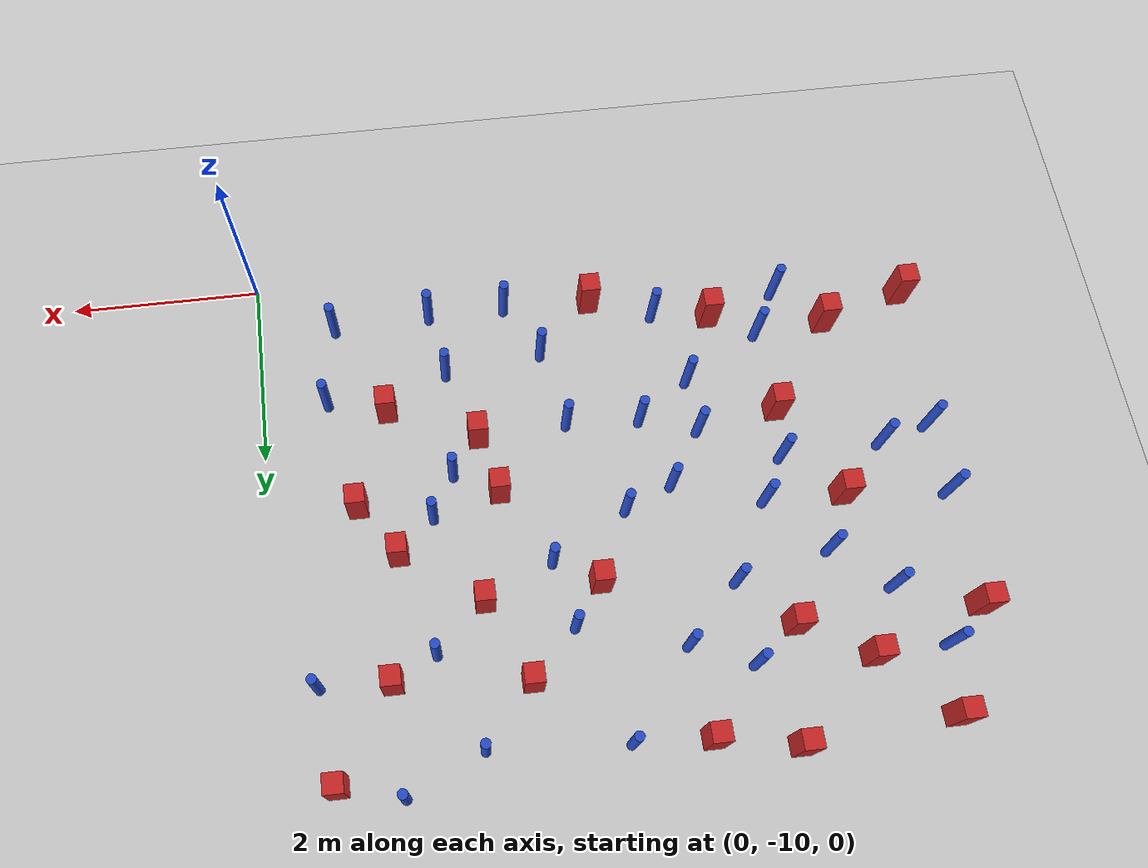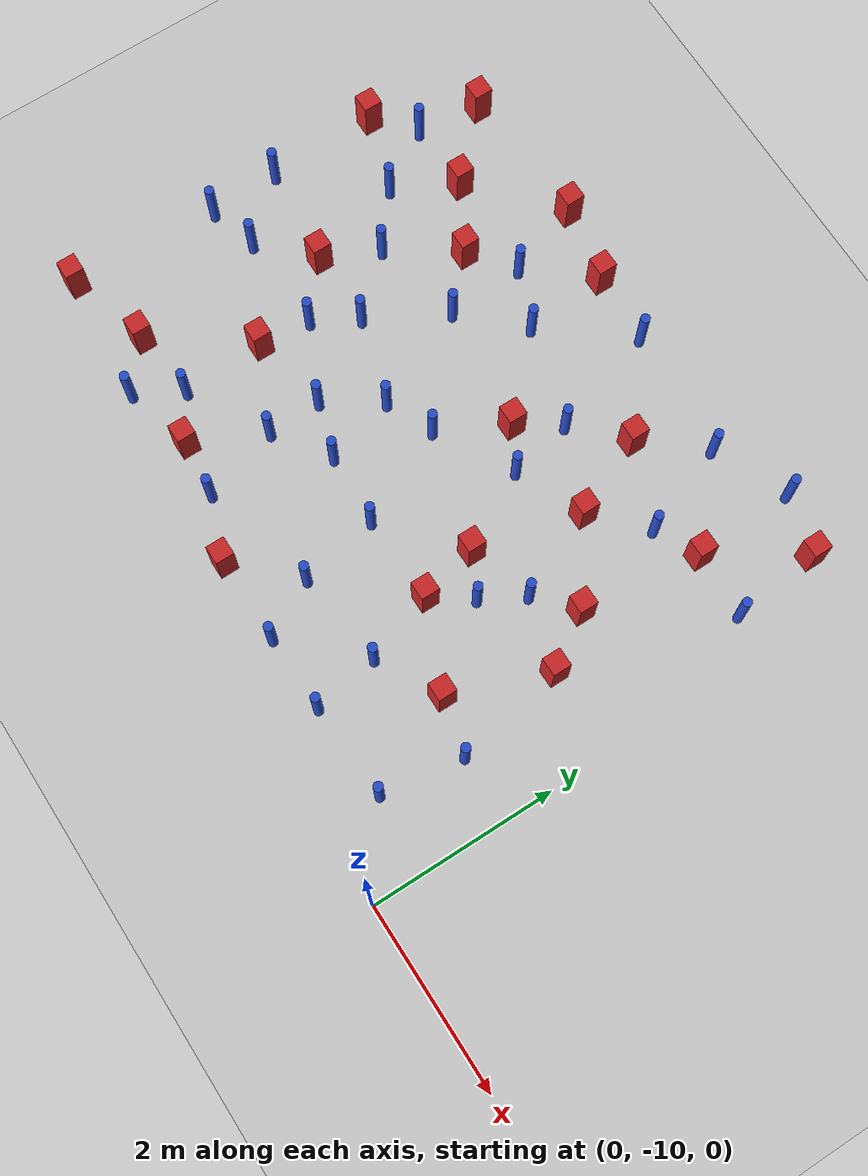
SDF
<sdf version="1.6">
 <world name="default">
  <model name="ground_plane">
   <static>1</static>
   <link name="link">
    <collision name="collision">
     <geometry><plane><normal>0 0 1</normal><size>100 100</size></plane></geometry>
     <surface><friction><ode><mu>100</mu><mu2>50</mu2></ode></friction></surface>
    </collision>
    <visual name="visual">
     <cast_shadows>0</cast_shadows>
     <geometry><plane><normal>0 0 1</normal><size>100 100</size></plane></geometry>
     <material>
      <ambient>1.0 1.0 1.0 1.0</ambient>
      <diffuse>0.8 0.8 0.8 1.0</diffuse>
      <specular>0.01 0.01 0.01 1.000000</specular>
     </material>
    </visual>
   </link>
  </model>
  <model name="pole_obstacle2">
   <static>true</static>
   <pose>-5.59942114172 -9.33628321558 7.38925637345e-09 -8.471706928e-08 1.24976765081e-08 -1.74513093015e-07</pose>
   <link name="link">
    <pose>0 0 0.3 0 -0 0</pose>
    <inertial>
     <mass>1</mass>
     <inertia><ixx>0.145833</ixx><ixy>0</ixy><ixz>0</ixz><iyy>0.145833</iyy><iyz>0</iyz><izz>0.125</izz></inertia>
    </inertial>
    <collision name="collision">
     <geometry><cylinder><radius>0.05</radius><length>.6</length></cylinder></geometry>
    </collision>
    <visual name="visual">
     <geometry><cylinder><radius>0.05</radius><length>.6</length></cylinder></geometry>
     <material>
      <script><name>Gazebo/Blue</name><uri>file://media/materials/scripts/gazebo.material</uri></script>
     </material>
    </visual>
   </link>
  </model>
  <model name="pole_obstacle4">
   <static>true</static>
   <pose>-6.13567891964 -5.92751937192 7.38925637345e-09 -8.47170692796e-08 1.24976764786e-08 -1.74513093032e-07</pose>
   <link name="link">
    <pose>0 0 0.3 0 -0 0</pose>
    <inertial>
     <mass>1</mass>
     <inertia><ixx>0.145833</ixx><ixy>0</ixy><ixz>0</ixz><iyy>0.145833</iyy><iyz>0</iyz><izz>0.125</izz></inertia>
    </inertial>
    <collision name="collision">
     <geometry><cylinder><radius>0.05</radius><length>.6</length></cylinder></geometry>
    </collision>
    <visual name="visual">
     <geometry><cylinder><radius>0.05</radius><length>.6</length></cylinder></geometry>
     <material>
      <script><name>Gazebo/Blue</name><uri>file://media/materials/scripts/gazebo.material</uri></script>
     </material>
    </visual>
   </link>
  </model>
  <model name="pole_obstacle7">
   <static>true</static>
   <pose>-5.32502928217 -8.85648023262 7.38925637345e-09 -8.471706928e-08 1.24976765081e-08 -1.74513093015e-07</pose>
   <link name="link">
    <pose>0 0 0.3 0 -0 0</pose>
    <inertial>
     <mass>1</mass>
     <inertia><ixx>0.145833</ixx><ixy>0</ixy><ixz>0</ixz><iyy>0.145833</iyy><iyz>0</iyz><izz>0.125</izz></inertia>
    </inertial>
    <collision name="collision">
     <geometry><cylinder><radius>0.05</radius><length>.6</length></cylinder></geometry>
    </collision>
    <visual name="visual">
     <geometry><cylinder><radius>0.05</radius><length>.6</length></cylinder></geometry>
     <material>
      <script><name>Gazebo/Blue</name><uri>file://media/materials/scripts/gazebo.material</uri></script>
     </material>
    </visual>
   </link>
  </model>
  <model name="square_post_obstacle15">
   <static>true</static>
   <pose>-5.79865382688 -5.27832729134 1.91545236811e-07 -7.35059704564e-06 1.12565212e-07 2.39332434364e-05</pose>
   <link name="link">
    <pose>0 0 0.25 0 -0 0</pose>
    <inertial>
     <mass>100</mass>
     <inertia>
      <ixx>0.166667</ixx>
      <ixy>0</ixy>
      <ixz>0</ixz>
      <iyy>0.166667</iyy>
      <iyz>0</iyz>
      <izz>0.166667</izz>
     </inertia>
    </inertial>
    <collision name="collision"><geometry><box><size>.2 .2 .5</size></box></geometry></collision>
    <visual name="visual">
     <geometry><box><size>.2 .2 .5</size></box></geometry>
     <material>
      <script><name>Gazebo/Red</name><uri>file://media/materials/scripts/gazebo.material</uri></script>
     </material>
    </visual>
   </link>
  </model>
  <model name="square_post_obstacle19">
   <static>true</static>
   <pose>-5.86505825323 -6.95468134986 1.91545236811e-07 -7.35059704564e-06 1.12565212e-07 2.39332434364e-05</pose>
   <link name="link">
    <pose>0 0 0.25 0 -0 0</pose>
    <inertial>
     <mass>100</mass>
     <inertia>
      <ixx>0.166667</ixx>
      <ixy>0</ixy>
      <ixz>0</ixz>
      <iyy>0.166667</iyy>
      <iyz>0</iyz>
      <izz>0.166667</izz>
     </inertia>
    </inertial>
    <collision name="collision"><geometry><box><size>.2 .2 .5</size></box></geometry></collision>
    <visual name="visual">
     <geometry><box><size>.2 .2 .5</size></box></geometry>
     <material>
      <script><name>Gazebo/Red</name><uri>file://media/materials/scripts/gazebo.material</uri></script>
     </material>
    </visual>
   </link>
  </model>
  <model name="pole_obstacle11">
   <static>true</static>
   <pose>-4.50997435611 -7.80186108126 7.38925637345e-09 -8.47170692796e-08 1.24976764786e-08 -1.74513093032e-07</pose>
   <link name="link">
    <pose>0 0 0.3 0 -0 0</pose>
    <inertial>
     <mass>1</mass>
     <inertia><ixx>0.145833</ixx><ixy>0</ixy><ixz>0</ixz><iyy>0.145833</iyy><iyz>0</iyz><izz>0.125</izz></inertia>
    </inertial>
    <collision name="collision">
     <geometry><cylinder><radius>0.05</radius><length>.6</length></cylinder></geometry>
    </collision>
    <visual name="visual">
     <geometry><cylinder><radius>0.05</radius><length>.6</length></cylinder></geometry>
     <material>
      <script><name>Gazebo/Blue</name><uri>file://media/materials/scripts/gazebo.material</uri></script>
     </material>
    </visual>
   </link>
  </model>
  <model name="square_post_obstacle24">
   <static>true</static>
   <pose>-6.97479643628 -9.19102325325 1.91545236811e-07 -7.35059704564e-06 1.12565212e-07 2.39332434364e-05</pose>
   <link name="link">
    <pose>0 0 0.25 0 -0 0</pose>
    <inertial>
     <mass>100</mass>
     <inertia>
      <ixx>0.166667</ixx>
      <ixy>0</ixy>
      <ixz>0</ixz>
      <iyy>0.166667</iyy>
      <iyz>0</iyz>
      <izz>0.166667</izz>
     </inertia>
    </inertial>
    <collision name="collision"><geometry><box><size>.2 .2 .5</size></box></geometry></collision>
    <visual name="visual">
     <geometry><box><size>.2 .2 .5</size></box></geometry>
     <material>
      <script><name>Gazebo/Red</name><uri>file://media/materials/scripts/gazebo.material</uri></script>
     </material>
    </visual>
   </link>
  </model>
  <model name="square_post_obstacle33">
   <static>true</static>
   <pose>-5.36656055961 -7.96376915441 1.91545236811e-07 -7.35059704564e-06 1.12565212e-07 2.39332434364e-05</pose>
   <link name="link">
    <pose>0 0 0.25 0 -0 0</pose>
    <inertial>
     <mass>100</mass>
     <inertia>
      <ixx>0.166667</ixx>
      <ixy>0</ixy>
      <ixz>0</ixz>
      <iyy>0.166667</iyy>
      <iyz>0</iyz>
      <izz>0.166667</izz>
     </inertia>
    </inertial>
    <collision name="collision"><geometry><box><size>.2 .2 .5</size></box></geometry></collision>
    <visual name="visual">
     <geometry><box><size>.2 .2 .5</size></box></geometry>
     <material>
      <script><name>Gazebo/Red</name><uri>file://media/materials/scripts/gazebo.material</uri></script>
     </material>
    </visual>
   </link>
  </model>
  <model name="pole_obstacle41">
   <static>true</static>
   <pose>-6.89412848095 -7.60096703606 7.38925637345e-09 -8.47170692796e-08 1.24976764786e-08 -1.74513093032e-07</pose>
   <link name="link">
    <pose>0 0 0.3 0 -0 0</pose>
    <inertial>
     <mass>1</mass>
     <inertia><ixx>0.145833</ixx><ixy>0</ixy><ixz>0</ixz><iyy>0.145833</iyy><iyz>0</iyz><izz>0.125</izz></inertia>
    </inertial>
    <collision name="collision">
     <geometry><cylinder><radius>0.05</radius><length>.6</length></cylinder></geometry>
    </collision>
    <visual name="visual">
     <geometry><cylinder><radius>0.05</radius><length>.6</length></cylinder></geometry>
     <material>
      <script><name>Gazebo/Blue</name><uri>file://media/materials/scripts/gazebo.material</uri></script>
     </material>
    </visual>
   </link>
  </model>
  <model name="square_post_obstacle41">
   <static>true</static>
   <pose>-0.546519905463 -4.6019082695 1.91545236811e-07 -7.35059704564e-06 1.12565212e-07 2.39332434364e-05</pose>
   <link name="link">
    <pose>0 0 0.25 0 -0 0</pose>
    <inertial>
     <mass>100</mass>
     <inertia>
      <ixx>0.166667</ixx>
      <ixy>0</ixy>
      <ixz>0</ixz>
      <iyy>0.166667</iyy>
      <iyz>0</iyz>
      <izz>0.166667</izz>
     </inertia>
    </inertial>
    <collision name="collision"><geometry><box><size>.2 .2 .5</size></box></geometry></collision>
    <visual name="visual">
     <geometry><box><size>.2 .2 .5</size></box></geometry>
     <material>
      <script><name>Gazebo/Red</name><uri>file://media/materials/scripts/gazebo.material</uri></script>
     </material>
    </visual>
   </link>
  </model>
  <model name="square_post_obstacle42">
   <static>true</static>
   <pose>-1.31060066251 -8.38864413379 1.91545236811e-07 -7.35059704564e-06 1.12565212e-07 2.39332434364e-05</pose>
   <link name="link">
    <pose>0 0 0.25 0 -0 0</pose>
    <inertial>
     <mass>100</mass>
     <inertia>
      <ixx>0.166667</ixx>
      <ixy>0</ixy>
      <ixz>0</ixz>
      <iyy>0.166667</iyy>
      <iyz>0</iyz>
      <izz>0.166667</izz>
     </inertia>
    </inertial>
    <collision name="collision"><geometry><box><size>.2 .2 .5</size></box></geometry></collision>
    <visual name="visual">
     <geometry><box><size>.2 .2 .5</size></box></geometry>
     <material>
      <script><name>Gazebo/Red</name><uri>file://media/materials/scripts/gazebo.material</uri></script>
     </material>
    </visual>
   </link>
  </model>
  <model name="pole_obstacle46">
   <static>true</static>
   <pose>-2.66505201719 -9.46393592361 7.38925637345e-09 -8.47170692793e-08 1.24976764408e-08 -1.74513093041e-07</pose>
   <link name="link">
    <pose>0 0 0.3 0 -0 0</pose>
    <inertial>
     <mass>1</mass>
     <inertia><ixx>0.145833</ixx><ixy>0</ixy><ixz>0</ixz><iyy>0.145833</iyy><iyz>0</iyz><izz>0.125</izz></inertia>
    </inertial>
    <collision name="collision">
     <geometry><cylinder><radius>0.05</radius><length>.6</length></cylinder></geometry>
    </collision>
    <visual name="visual">
     <geometry><cylinder><radius>0.05</radius><length>.6</length></cylinder></geometry>
     <material>
      <script><name>Gazebo/Blue</name><uri>file://media/materials/scripts/gazebo.material</uri></script>
     </material>
    </visual>
   </link>
  </model>
  <model name="pole_obstacle48">
   <static>true</static>
   <pose>-1.9566882866 -4.78122615546 7.38925637345e-09 -8.47170692799e-08 1.2497676507e-08 -1.74513093016e-07</pose>
   <link name="link">
    <pose>0 0 0.3 0 -0 0</pose>
    <inertial>
     <mass>1</mass>
     <inertia><ixx>0.145833</ixx><ixy>0</ixy><ixz>0</ixz><iyy>0.145833</iyy><iyz>0</iyz><izz>0.125</izz></inertia>
    </inertial>
    <collision name="collision">
     <geometry><cylinder><radius>0.05</radius><length>.6</length></cylinder></geometry>
    </collision>
    <visual name="visual">
     <geometry><cylinder><radius>0.05</radius><length>.6</length></cylinder></geometry>
     <material>
      <script><name>Gazebo/Blue</name><uri>file://media/materials/scripts/gazebo.material</uri></script>
     </material>
    </visual>
   </link>
  </model>
  <model name="square_post_obstacle57">
   <static>true</static>
   <pose>-4.92957913262 -4.50563737239 1.91545236811e-07 -7.35059704564e-06 1.12565212e-07 2.39332434364e-05</pose>
   <link name="link">
    <pose>0 0 0.25 0 -0 0</pose>
    <inertial>
     <mass>100</mass>
     <inertia>
      <ixx>0.166667</ixx>
      <ixy>0</ixy>
      <ixz>0</ixz>
      <iyy>0.166667</iyy>
      <iyz>0</iyz>
      <izz>0.166667</izz>
     </inertia>
    </inertial>
    <collision name="collision"><geometry><box><size>.2 .2 .5</size></box></geometry></collision>
    <visual name="visual">
     <geometry><box><size>.2 .2 .5</size></box></geometry>
     <material>
      <script><name>Gazebo/Red</name><uri>file://media/materials/scripts/gazebo.material</uri></script>
     </material>
    </visual>
   </link>
  </model>
  <model name="pole_obstacle57">
   <static>true</static>
   <pose>-1.58524360668 -5.74395826012 7.38925637345e-09 -8.47170692799e-08 1.24976765033e-08 -1.74513093018e-07</pose>
   <link name="link">
    <pose>0 0 0.3 0 -0 0</pose>
    <inertial>
     <mass>1</mass>
     <inertia><ixx>0.145833</ixx><ixy>0</ixy><ixz>0</ixz><iyy>0.145833</iyy><iyz>0</iyz><izz>0.125</izz></inertia>
    </inertial>
    <collision name="collision">
     <geometry><cylinder><radius>0.05</radius><length>.6</length></cylinder></geometry>
    </collision>
    <visual name="visual">
     <geometry><cylinder><radius>0.05</radius><length>.6</length></cylinder></geometry>
     <material>
      <script><name>Gazebo/Blue</name><uri>file://media/materials/scripts/gazebo.material</uri></script>
     </material>
    </visual>
   </link>
  </model>
  <model name="pole_obstacle58">
   <static>true</static>
   <pose>-2.8232612555 -6.54760859134 7.38925637345e-09 -8.47170692798e-08 1.24976765033e-08 -1.74513093019e-07</pose>
   <link name="link">
    <pose>0 0 0.3 0 -0 0</pose>
    <inertial>
     <mass>1</mass>
     <inertia><ixx>0.145833</ixx><ixy>0</ixy><ixz>0</ixz><iyy>0.145833</iyy><iyz>0</iyz><izz>0.125</izz></inertia>
    </inertial>
    <collision name="collision">
     <geometry><cylinder><radius>0.05</radius><length>.6</length></cylinder></geometry>
    </collision>
    <visual name="visual">
     <geometry><cylinder><radius>0.05</radius><length>.6</length></cylinder></geometry>
     <material>
      <script><name>Gazebo/Blue</name><uri>file://media/materials/scripts/gazebo.material</uri></script>
     </material>
    </visual>
   </link>
  </model>
  <model name="pole_obstacle62">
   <static>true</static>
   <pose>-3.63109422579 -7.01114262216 7.38925637345e-09 -8.47170692794e-08 1.24976764468e-08 -1.7451309304e-07</pose>
   <link name="link">
    <pose>0 0 0.3 0 -0 0</pose>
    <inertial>
     <mass>1</mass>
     <inertia><ixx>0.145833</ixx><ixy>0</ixy><ixz>0</ixz><iyy>0.145833</iyy><iyz>0</iyz><izz>0.125</izz></inertia>
    </inertial>
    <collision name="collision">
     <geometry><cylinder><radius>0.05</radius><length>.6</length></cylinder></geometry>
    </collision>
    <visual name="visual">
     <geometry><cylinder><radius>0.05</radius><length>.6</length></cylinder></geometry>
     <material>
      <script><name>Gazebo/Blue</name><uri>file://media/materials/scripts/gazebo.material</uri></script>
     </material>
    </visual>
   </link>
  </model>
  <model name="pole_obstacle63">
   <static>true</static>
   <pose>-0.42474610591 -5.5409962139 7.38925637345e-09 -8.471706928e-08 1.24976765079e-08 -1.74513093015e-07</pose>
   <link name="link">
    <pose>0 0 0.3 0 -0 0</pose>
    <inertial>
     <mass>1</mass>
     <inertia><ixx>0.145833</ixx><ixy>0</ixy><ixz>0</ixz><iyy>0.145833</iyy><iyz>0</iyz><izz>0.125</izz></inertia>
    </inertial>
    <collision name="collision">
     <geometry><cylinder><radius>0.05</radius><length>.6</length></cylinder></geometry>
    </collision>
    <visual name="visual">
     <geometry><cylinder><radius>0.05</radius><length>.6</length></cylinder></geometry>
     <material>
      <script><name>Gazebo/Blue</name><uri>file://media/materials/scripts/gazebo.material</uri></script>
     </material>
    </visual>
   </link>
  </model>
  <model name="square_post_obstacle66">
   <static>true</static>
   <pose>-1.29973315345 -6.80086795302 1.91545236811e-07 -7.35059704564e-06 1.12565212e-07 2.39332434364e-05</pose>
   <link name="link">
    <pose>0 0 0.25 0 -0 0</pose>
    <inertial>
     <mass>100</mass>
     <inertia>
      <ixx>0.166667</ixx>
      <ixy>0</ixy>
      <ixz>0</ixz>
      <iyy>0.166667</iyy>
      <iyz>0</iyz>
      <izz>0.166667</izz>
     </inertia>
    </inertial>
    <collision name="collision"><geometry><box><size>.2 .2 .5</size></box></geometry></collision>
    <visual name="visual">
     <geometry><box><size>.2 .2 .5</size></box></geometry>
     <material>
      <script><name>Gazebo/Red</name><uri>file://media/materials/scripts/gazebo.material</uri></script>
     </material>
    </visual>
   </link>
  </model>
  <model name="square_post_obstacle75">
   <static>true</static>
   <pose>-6.07728561277 -8.93765983794 1.91545236811e-07 -7.35059704564e-06 1.12565212e-07 2.39332434364e-05</pose>
   <link name="link">
    <pose>0 0 0.25 0 -0 0</pose>
    <inertial>
     <mass>100</mass>
     <inertia>
      <ixx>0.166667</ixx>
      <ixy>0</ixy>
      <ixz>0</ixz>
      <iyy>0.166667</iyy>
      <iyz>0</iyz>
      <izz>0.166667</izz>
     </inertia>
    </inertial>
    <collision name="collision"><geometry><box><size>.2 .2 .5</size></box></geometry></collision>
    <visual name="visual">
     <geometry><box><size>.2 .2 .5</size></box></geometry>
     <material>
      <script><name>Gazebo/Red</name><uri>file://media/materials/scripts/gazebo.material</uri></script>
     </material>
    </visual>
   </link>
  </model>
  <model name="pole_obstacle79">
   <static>true</static>
   <pose>-4.64412056646 -5.3079559077 7.38925637345e-09 -8.47170692796e-08 1.24976764786e-08 -1.74513093032e-07</pose>
   <link name="link">
    <pose>0 0 0.3 0 -0 0</pose>
    <inertial>
     <mass>1</mass>
     <inertia><ixx>0.145833</ixx><ixy>0</ixy><ixz>0</ixz><iyy>0.145833</iyy><iyz>0</iyz><izz>0.125</izz></inertia>
    </inertial>
    <collision name="collision">
     <geometry><cylinder><radius>0.05</radius><length>.6</length></cylinder></geometry>
    </collision>
    <visual name="visual">
     <geometry><cylinder><radius>0.05</radius><length>.6</length></cylinder></geometry>
     <material>
      <script><name>Gazebo/Blue</name><uri>file://media/materials/scripts/gazebo.material</uri></script>
     </material>
    </visual>
   </link>
  </model>
  <model name="pole_obstacle96">
   <static>true</static>
   <pose>-3.9251048176 -7.98612637888 7.38925637345e-09 -8.47170692799e-08 1.24976764946e-08 -1.74513093024e-07</pose>
   <link name="link">
    <pose>0 0 0.3 0 -0 0</pose>
    <inertial>
     <mass>1</mass>
     <inertia><ixx>0.145833</ixx><ixy>0</ixy><ixz>0</ixz><iyy>0.145833</iyy><iyz>0</iyz><izz>0.125</izz></inertia>
    </inertial>
    <collision name="collision">
     <geometry><cylinder><radius>0.05</radius><length>.6</length></cylinder></geometry>
    </collision>
    <visual name="visual">
     <geometry><cylinder><radius>0.05</radius><length>.6</length></cylinder></geometry>
     <material>
      <script><name>Gazebo/Blue</name><uri>file://media/materials/scripts/gazebo.material</uri></script>
     </material>
    </visual>
   </link>
  </model>
  <model name="square_post_obstacle86">
   <static>true</static>
   <pose>-2.37950763084 -7.36046344713 1.91545236811e-07 -7.35059704564e-06 1.12565212e-07 2.39332434364e-05</pose>
   <link name="link">
    <pose>0 0 0.25 0 -0 0</pose>
    <inertial>
     <mass>100</mass>
     <inertia>
      <ixx>0.166667</ixx>
      <ixy>0</ixy>
      <ixz>0</ixz>
      <iyy>0.166667</iyy>
      <iyz>0</iyz>
      <izz>0.166667</izz>
     </inertia>
    </inertial>
    <collision name="collision"><geometry><box><size>.2 .2 .5</size></box></geometry></collision>
    <visual name="visual">
     <geometry><box><size>.2 .2 .5</size></box></geometry>
     <material>
      <script><name>Gazebo/Red</name><uri>file://media/materials/scripts/gazebo.material</uri></script>
     </material>
    </visual>
   </link>
  </model>
  <model name="pole_obstacle97">
   <static>true</static>
   <pose>-1.96499077881 -8.74709724137 7.38925637345e-09 -8.47170692797e-08 1.24976764886e-08 -1.74513093027e-07</pose>
   <link name="link">
    <pose>0 0 0.3 0 -0 0</pose>
    <inertial>
     <mass>1</mass>
     <inertia><ixx>0.145833</ixx><ixy>0</ixy><ixz>0</ixz><iyy>0.145833</iyy><iyz>0</iyz><izz>0.125</izz></inertia>
    </inertial>
    <collision name="collision">
     <geometry><cylinder><radius>0.05</radius><length>.6</length></cylinder></geometry>
    </collision>
    <visual name="visual">
     <geometry><cylinder><radius>0.05</radius><length>.6</length></cylinder></geometry>
     <material>
      <script><name>Gazebo/Blue</name><uri>file://media/materials/scripts/gazebo.material</uri></script>
     </material>
    </visual>
   </link>
  </model>
  <model name="pole_obstacle99">
   <static>true</static>
   <pose>-3.34439437013 -4.69058349057 7.38925637345e-09 -8.47170692798e-08 1.24976765033e-08 -1.74513093019e-07</pose>
   <link name="link">
    <pose>0 0 0.3 0 -0 0</pose>
    <inertial>
     <mass>1</mass>
     <inertia><ixx>0.145833</ixx><ixy>0</ixy><ixz>0</ixz><iyy>0.145833</iyy><iyz>0</iyz><izz>0.125</izz></inertia>
    </inertial>
    <collision name="collision">
     <geometry><cylinder><radius>0.05</radius><length>.6</length></cylinder></geometry>
    </collision>
    <visual name="visual">
     <geometry><cylinder><radius>0.05</radius><length>.6</length></cylinder></geometry>
     <material>
      <script><name>Gazebo/Blue</name><uri>file://media/materials/scripts/gazebo.material</uri></script>
     </material>
    </visual>
   </link>
  </model>
  <model name="pole_obstacle105">
   <static>true</static>
   <pose>-5.31120933364 -7.41500986657 7.38925637345e-09 -8.47170692796e-08 1.24976764786e-08 -1.74513093032e-07</pose>
   <link name="link">
    <pose>0 0 0.3 0 -0 0</pose>
    <inertial>
     <mass>1</mass>
     <inertia><ixx>0.145833</ixx><ixy>0</ixy><ixz>0</ixz><iyy>0.145833</iyy><iyz>0</iyz><izz>0.125</izz></inertia>
    </inertial>
    <collision name="collision">
     <geometry><cylinder><radius>0.05</radius><length>.6</length></cylinder></geometry>
    </collision>
    <visual name="visual">
     <geometry><cylinder><radius>0.05</radius><length>.6</length></cylinder></geometry>
     <material>
      <script><name>Gazebo/Blue</name><uri>file://media/materials/scripts/gazebo.material</uri></script>
     </material>
    </visual>
   </link>
  </model>
  <model name="pole_obstacle118">
   <static>true</static>
   <pose>-4.48984894607 -8.38030831967 7.38925637345e-09 -8.471706928e-08 1.24976765081e-08 -1.74513093015e-07</pose>
   <link name="link">
    <pose>0 0 0.3 0 -0 0</pose>
    <inertial>
     <mass>1</mass>
     <inertia><ixx>0.145833</ixx><ixy>0</ixy><ixz>0</ixz><iyy>0.145833</iyy><iyz>0</iyz><izz>0.125</izz></inertia>
    </inertial>
    <collision name="collision">
     <geometry><cylinder><radius>0.05</radius><length>.6</length></cylinder></geometry>
    </collision>
    <visual name="visual">
     <geometry><cylinder><radius>0.05</radius><length>.6</length></cylinder></geometry>
     <material>
      <script><name>Gazebo/Blue</name><uri>file://media/materials/scripts/gazebo.material</uri></script>
     </material>
    </visual>
   </link>
  </model>
  <model name="square_post_obstacle103">
   <static>true</static>
   <pose>-2.22656589568 -7.99354694749 1.91545236811e-07 -7.35059704564e-06 1.12565212e-07 2.39332434364e-05</pose>
   <link name="link">
    <pose>0 0 0.25 0 -0 0</pose>
    <inertial>
     <mass>100</mass>
     <inertia>
      <ixx>0.166667</ixx>
      <ixy>0</ixy>
      <ixz>0</ixz>
      <iyy>0.166667</iyy>
      <iyz>0</iyz>
      <izz>0.166667</izz>
     </inertia>
    </inertial>
    <collision name="collision"><geometry><box><size>.2 .2 .5</size></box></geometry></collision>
    <visual name="visual">
     <geometry><box><size>.2 .2 .5</size></box></geometry>
     <material>
      <script><name>Gazebo/Red</name><uri>file://media/materials/scripts/gazebo.material</uri></script>
     </material>
    </visual>
   </link>
  </model>
  <model name="square_post_obstacle108">
   <static>true</static>
   <pose>-5.10477011816 -5.66722144056 1.91545236811e-07 -7.35059704564e-06 1.12565212e-07 2.39332434364e-05</pose>
   <link name="link">
    <pose>0 0 0.25 0 -0 0</pose>
    <inertial>
     <mass>100</mass>
     <inertia>
      <ixx>0.166667</ixx>
      <ixy>0</ixy>
      <ixz>0</ixz>
      <iyy>0.166667</iyy>
      <iyz>0</iyz>
      <izz>0.166667</izz>
     </inertia>
    </inertial>
    <collision name="collision"><geometry><box><size>.2 .2 .5</size></box></geometry></collision>
    <visual name="visual">
     <geometry><box><size>.2 .2 .5</size></box></geometry>
     <material>
      <script><name>Gazebo/Red</name><uri>file://media/materials/scripts/gazebo.material</uri></script>
     </material>
    </visual>
   </link>
  </model>
  <model name="square_post_obstacle109">
   <static>true</static>
   <pose>-4.11438017461 -4.66160141473 1.91545236811e-07 -7.35059704564e-06 1.12565212e-07 2.39332434364e-05</pose>
   <link name="link">
    <pose>0 0 0.25 0 -0 0</pose>
    <inertial>
     <mass>100</mass>
     <inertia>
      <ixx>0.166667</ixx>
      <ixy>0</ixy>
      <ixz>0</ixz>
      <iyy>0.166667</iyy>
      <iyz>0</iyz>
      <izz>0.166667</izz>
     </inertia>
    </inertial>
    <collision name="collision"><geometry><box><size>.2 .2 .5</size></box></geometry></collision>
    <visual name="visual">
     <geometry><box><size>.2 .2 .5</size></box></geometry>
     <material>
      <script><name>Gazebo/Red</name><uri>file://media/materials/scripts/gazebo.material</uri></script>
     </material>
    </visual>
   </link>
  </model>
  <model name="pole_obstacle121">
   <static>true</static>
   <pose>-5.58776803178 -6.36771232137 7.38925637345e-09 -8.47170692796e-08 1.24976764786e-08 -1.74513093032e-07</pose>
   <link name="link">
    <pose>0 0 0.3 0 -0 0</pose>
    <inertial>
     <mass>1</mass>
     <inertia><ixx>0.145833</ixx><ixy>0</ixy><ixz>0</ixz><iyy>0.145833</iyy><iyz>0</iyz><izz>0.125</izz></inertia>
    </inertial>
    <collision name="collision">
     <geometry><cylinder><radius>0.05</radius><length>.6</length></cylinder></geometry>
    </collision>
    <visual name="visual">
     <geometry><cylinder><radius>0.05</radius><length>.6</length></cylinder></geometry>
     <material>
      <script><name>Gazebo/Blue</name><uri>file://media/materials/scripts/gazebo.material</uri></script>
     </material>
    </visual>
   </link>
  </model>
  <model name="pole_obstacle137">
   <static>true</static>
   <pose>-1.17287505893 -4.42519154806 7.38925637345e-09 -8.47170692799e-08 1.24976765033e-08 -1.74513093018e-07</pose>
   <link name="link">
    <pose>0 0 0.3 0 -0 0</pose>
    <inertial>
     <mass>1</mass>
     <inertia><ixx>0.145833</ixx><ixy>0</ixy><ixz>0</ixz><iyy>0.145833</iyy><iyz>0</iyz><izz>0.125</izz></inertia>
    </inertial>
    <collision name="collision">
     <geometry><cylinder><radius>0.05</radius><length>.6</length></cylinder></geometry>
    </collision>
    <visual name="visual">
     <geometry><cylinder><radius>0.05</radius><length>.6</length></cylinder></geometry>
     <material>
      <script><name>Gazebo/Blue</name><uri>file://media/materials/scripts/gazebo.material</uri></script>
     </material>
    </visual>
   </link>
  </model>
  <model name="pole_obstacle140">
   <static>true</static>
   <pose>-0.823652840734 -9.4027105808 7.38925637345e-09 -8.47170692797e-08 1.249767648e-08 -1.74513093032e-07</pose>
   <link name="link">
    <pose>0 0 0.3 0 -0 0</pose>
    <inertial>
     <mass>1</mass>
     <inertia><ixx>0.145833</ixx><ixy>0</ixy><ixz>0</ixz><iyy>0.145833</iyy><iyz>0</iyz><izz>0.125</izz></inertia>
    </inertial>
    <collision name="collision">
     <geometry><cylinder><radius>0.05</radius><length>.6</length></cylinder></geometry>
    </collision>
    <visual name="visual">
     <geometry><cylinder><radius>0.05</radius><length>.6</length></cylinder></geometry>
     <material>
      <script><name>Gazebo/Blue</name><uri>file://media/materials/scripts/gazebo.material</uri></script>
     </material>
    </visual>
   </link>
  </model>
  <model name="square_post_obstacle136">
   <static>true</static>
   <pose>-2.1071908624 -6.22860484358 1.91545236811e-07 -7.35059704564e-06 1.12565212e-07 2.39332434364e-05</pose>
   <link name="link">
    <pose>0 0 0.25 0 -0 0</pose>
    <inertial>
     <mass>100</mass>
     <inertia>
      <ixx>0.166667</ixx>
      <ixy>0</ixy>
      <ixz>0</ixz>
      <iyy>0.166667</iyy>
      <iyz>0</iyz>
      <izz>0.166667</izz>
     </inertia>
    </inertial>
    <collision name="collision"><geometry><box><size>.2 .2 .5</size></box></geometry></collision>
    <visual name="visual">
     <geometry><box><size>.2 .2 .5</size></box></geometry>
     <material>
      <script><name>Gazebo/Red</name><uri>file://media/materials/scripts/gazebo.material</uri></script>
     </material>
    </visual>
   </link>
  </model>
  <model name="square_post_obstacle140">
   <static>true</static>
   <pose>-1.13908644644 -5.51628952623 1.91545236811e-07 -7.35059704564e-06 1.12565212e-07 2.39332434364e-05</pose>
   <link name="link">
    <pose>0 0 0.25 0 -0 0</pose>
    <inertial>
     <mass>100</mass>
     <inertia>
      <ixx>0.166667</ixx>
      <ixy>0</ixy>
      <ixz>0</ixz>
      <iyy>0.166667</iyy>
      <iyz>0</iyz>
      <izz>0.166667</izz>
     </inertia>
    </inertial>
    <collision name="collision"><geometry><box><size>.2 .2 .5</size></box></geometry></collision>
    <visual name="visual">
     <geometry><box><size>.2 .2 .5</size></box></geometry>
     <material>
      <script><name>Gazebo/Red</name><uri>file://media/materials/scripts/gazebo.material</uri></script>
     </material>
    </visual>
   </link>
  </model>
  <model name="pole_obstacle152">
   <static>true</static>
   <pose>-6.92353299286 -6.84464064423 7.38925637345e-09 -8.47170692796e-08 1.24976764786e-08 -1.74513093032e-07</pose>
   <link name="link">
    <pose>0 0 0.3 0 -0 0</pose>
    <inertial>
     <mass>1</mass>
     <inertia><ixx>0.145833</ixx><ixy>0</ixy><ixz>0</ixz><iyy>0.145833</iyy><iyz>0</iyz><izz>0.125</izz></inertia>
    </inertial>
    <collision name="collision">
     <geometry><cylinder><radius>0.05</radius><length>.6</length></cylinder></geometry>
    </collision>
    <visual name="visual">
     <geometry><cylinder><radius>0.05</radius><length>.6</length></cylinder></geometry>
     <material>
      <script><name>Gazebo/Blue</name><uri>file://media/materials/scripts/gazebo.material</uri></script>
     </material>
    </visual>
   </link>
  </model>
  <model name="pole_obstacle153">
   <static>true</static>
   <pose>-3.15878211498 -8.02919498338 7.38925637345e-09 -8.47170692795e-08 1.24976764645e-08 -1.74513093041e-07</pose>
   <link name="link">
    <pose>0 0 0.3 0 -0 0</pose>
    <inertial>
     <mass>1</mass>
     <inertia><ixx>0.145833</ixx><ixy>0</ixy><ixz>0</ixz><iyy>0.145833</iyy><iyz>0</iyz><izz>0.125</izz></inertia>
    </inertial>
    <collision name="collision">
     <geometry><cylinder><radius>0.05</radius><length>.6</length></cylinder></geometry>
    </collision>
    <visual name="visual">
     <geometry><cylinder><radius>0.05</radius><length>.6</length></cylinder></geometry>
     <material>
      <script><name>Gazebo/Blue</name><uri>file://media/materials/scripts/gazebo.material</uri></script>
     </material>
    </visual>
   </link>
  </model>
  <model name="pole_obstacle154">
   <static>true</static>
   <pose>-2.99256580673 -8.87206945604 7.38925637345e-09 -8.47170692793e-08 1.24976764408e-08 -1.74513093041e-07</pose>
   <link name="link">
    <pose>0 0 0.3 0 -0 0</pose>
    <inertial>
     <mass>1</mass>
     <inertia><ixx>0.145833</ixx><ixy>0</ixy><ixz>0</ixz><iyy>0.145833</iyy><iyz>0</iyz><izz>0.125</izz></inertia>
    </inertial>
    <collision name="collision">
     <geometry><cylinder><radius>0.05</radius><length>.6</length></cylinder></geometry>
    </collision>
    <visual name="visual">
     <geometry><cylinder><radius>0.05</radius><length>.6</length></cylinder></geometry>
     <material>
      <script><name>Gazebo/Blue</name><uri>file://media/materials/scripts/gazebo.material</uri></script>
     </material>
    </visual>
   </link>
  </model>
  <model name="pole_obstacle157">
   <static>true</static>
   <pose>-1.68389993407 -7.14673767154 7.38925637345e-09 -8.47170692799e-08 1.24976765033e-08 -1.74513093018e-07</pose>
   <link name="link">
    <pose>0 0 0.3 0 -0 0</pose>
    <inertial>
     <mass>1</mass>
     <inertia><ixx>0.145833</ixx><ixy>0</ixy><ixz>0</ixz><iyy>0.145833</iyy><iyz>0</iyz><izz>0.125</izz></inertia>
    </inertial>
    <collision name="collision">
     <geometry><cylinder><radius>0.05</radius><length>.6</length></cylinder></geometry>
    </collision>
    <visual name="visual">
     <geometry><cylinder><radius>0.05</radius><length>.6</length></cylinder></geometry>
     <material>
      <script><name>Gazebo/Blue</name><uri>file://media/materials/scripts/gazebo.material</uri></script>
     </material>
    </visual>
   </link>
  </model>
  <model name="pole_obstacle163">
   <static>true</static>
   <pose>-4.60467915494 -6.14153878866 7.38925637345e-09 -8.47170692796e-08 1.24976764786e-08 -1.74513093032e-07</pose>
   <link name="link">
    <pose>0 0 0.3 0 -0 0</pose>
    <inertial>
     <mass>1</mass>
     <inertia><ixx>0.145833</ixx><ixy>0</ixy><ixz>0</ixz><iyy>0.145833</iyy><iyz>0</iyz><izz>0.125</izz></inertia>
    </inertial>
    <collision name="collision">
     <geometry><cylinder><radius>0.05</radius><length>.6</length></cylinder></geometry>
    </collision>
    <visual name="visual">
     <geometry><cylinder><radius>0.05</radius><length>.6</length></cylinder></geometry>
     <material>
      <script><name>Gazebo/Blue</name><uri>file://media/materials/scripts/gazebo.material</uri></script>
     </material>
    </visual>
   </link>
  </model>
  <model name="square_post_obstacle159">
   <static>true</static>
   <pose>-6.96018535302 -5.66194619667 1.91545236811e-07 -7.35059704564e-06 1.12565212e-07 2.39332434364e-05</pose>
   <link name="link">
    <pose>0 0 0.25 0 -0 0</pose>
    <inertial>
     <mass>100</mass>
     <inertia>
      <ixx>0.166667</ixx>
      <ixy>0</ixy>
      <ixz>0</ixz>
      <iyy>0.166667</iyy>
      <iyz>0</iyz>
      <izz>0.166667</izz>
     </inertia>
    </inertial>
    <collision name="collision"><geometry><box><size>.2 .2 .5</size></box></geometry></collision>
    <visual name="visual">
     <geometry><box><size>.2 .2 .5</size></box></geometry>
     <material>
      <script><name>Gazebo/Red</name><uri>file://media/materials/scripts/gazebo.material</uri></script>
     </material>
    </visual>
   </link>
  </model>
  <model name="square_post_obstacle161">
   <static>true</static>
   <pose>-3.27156646967 -6.30033639184 1.91545236811e-07 -7.35059704564e-06 1.12565212e-07 2.39332434364e-05</pose>
   <link name="link">
    <pose>0 0 0.25 0 -0 0</pose>
    <inertial>
     <mass>100</mass>
     <inertia>
      <ixx>0.166667</ixx>
      <ixy>0</ixy>
      <ixz>0</ixz>
      <iyy>0.166667</iyy>
      <iyz>0</iyz>
      <izz>0.166667</izz>
     </inertia>
    </inertial>
    <collision name="collision"><geometry><box><size>.2 .2 .5</size></box></geometry></collision>
    <visual name="visual">
     <geometry><box><size>.2 .2 .5</size></box></geometry>
     <material>
      <script><name>Gazebo/Red</name><uri>file://media/materials/scripts/gazebo.material</uri></script>
     </material>
    </visual>
   </link>
  </model>
  <model name="pole_obstacle172">
   <static>true</static>
   <pose>-6.54576577443 -5.30209244988 7.38925637345e-09 -8.47170692796e-08 1.24976764786e-08 -1.74513093032e-07</pose>
   <link name="link">
    <pose>0 0 0.3 0 -0 0</pose>
    <inertial>
     <mass>1</mass>
     <inertia><ixx>0.145833</ixx><ixy>0</ixy><ixz>0</ixz><iyy>0.145833</iyy><iyz>0</iyz><izz>0.125</izz></inertia>
    </inertial>
    <collision name="collision">
     <geometry><cylinder><radius>0.05</radius><length>.6</length></cylinder></geometry>
    </collision>
    <visual name="visual">
     <geometry><cylinder><radius>0.05</radius><length>.6</length></cylinder></geometry>
     <material>
      <script><name>Gazebo/Blue</name><uri>file://media/materials/scripts/gazebo.material</uri></script>
     </material>
    </visual>
   </link>
  </model>
  <model name="pole_obstacle186">
   <static>true</static>
   <pose>-4.25172965124 -9.20585990399 7.38925637345e-09 -8.471706928e-08 1.24976765081e-08 -1.74513093015e-07</pose>
   <link name="link">
    <pose>0 0 0.3 0 -0 0</pose>
    <inertial>
     <mass>1</mass>
     <inertia><ixx>0.145833</ixx><ixy>0</ixy><ixz>0</ixz><iyy>0.145833</iyy><iyz>0</iyz><izz>0.125</izz></inertia>
    </inertial>
    <collision name="collision">
     <geometry><cylinder><radius>0.05</radius><length>.6</length></cylinder></geometry>
    </collision>
    <visual name="visual">
     <geometry><cylinder><radius>0.05</radius><length>.6</length></cylinder></geometry>
     <material>
      <script><name>Gazebo/Blue</name><uri>file://media/materials/scripts/gazebo.material</uri></script>
     </material>
    </visual>
   </link>
  </model>
  <model name="pole_obstacle187">
   <static>true</static>
   <pose>-4.13463764539 -7.23018970376 7.38925637345e-09 -8.47170692796e-08 1.24976764786e-08 -1.74513093032e-07</pose>
   <link name="link">
    <pose>0 0 0.3 0 -0 0</pose>
    <inertial>
     <mass>1</mass>
     <inertia><ixx>0.145833</ixx><ixy>0</ixy><ixz>0</ixz><iyy>0.145833</iyy><iyz>0</iyz><izz>0.125</izz></inertia>
    </inertial>
    <collision name="collision">
     <geometry><cylinder><radius>0.05</radius><length>.6</length></cylinder></geometry>
    </collision>
    <visual name="visual">
     <geometry><cylinder><radius>0.05</radius><length>.6</length></cylinder></geometry>
     <material>
      <script><name>Gazebo/Blue</name><uri>file://media/materials/scripts/gazebo.material</uri></script>
     </material>
    </visual>
   </link>
  </model>
  <model name="square_post_obstacle175">
   <static>true</static>
   <pose>-4.85559544311 -9.13634071893 1.91545236811e-07 -7.35059704564e-06 1.12565212e-07 2.39332434364e-05</pose>
   <link name="link">
    <pose>0 0 0.25 0 -0 0</pose>
    <inertial>
     <mass>100</mass>
     <inertia>
      <ixx>0.166667</ixx>
      <ixy>0</ixy>
      <ixz>0</ixz>
      <iyy>0.166667</iyy>
      <iyz>0</iyz>
      <izz>0.166667</izz>
     </inertia>
    </inertial>
    <collision name="collision"><geometry><box><size>.2 .2 .5</size></box></geometry></collision>
    <visual name="visual">
     <geometry><box><size>.2 .2 .5</size></box></geometry>
     <material>
      <script><name>Gazebo/Red</name><uri>file://media/materials/scripts/gazebo.material</uri></script>
     </material>
    </visual>
   </link>
  </model>
  <model name="square_post_obstacle180">
   <static>true</static>
   <pose>-0.931650785547 -7.35441920007 1.91545236811e-07 -7.35059704564e-06 1.12565212e-07 2.39332434364e-05</pose>
   <link name="link">
    <pose>0 0 0.25 0 -0 0</pose>
    <inertial>
     <mass>100</mass>
     <inertia>
      <ixx>0.166667</ixx>
      <ixy>0</ixy>
      <ixz>0</ixz>
      <iyy>0.166667</iyy>
      <iyz>0</iyz>
      <izz>0.166667</izz>
     </inertia>
    </inertial>
    <collision name="collision"><geometry><box><size>.2 .2 .5</size></box></geometry></collision>
    <visual name="visual">
     <geometry><box><size>.2 .2 .5</size></box></geometry>
     <material>
      <script><name>Gazebo/Red</name><uri>file://media/materials/scripts/gazebo.material</uri></script>
     </material>
    </visual>
   </link>
  </model>
  <model name="square_post_obstacle182">
   <static>true</static>
   <pose>-6.46136906617 -4.62201377712 1.91545236811e-07 -7.35059704564e-06 1.12565212e-07 2.39332434364e-05</pose>
   <link name="link">
    <pose>0 0 0.25 0 -0 0</pose>
    <inertial>
     <mass>100</mass>
     <inertia>
      <ixx>0.166667</ixx>
      <ixy>0</ixy>
      <ixz>0</ixz>
      <iyy>0.166667</iyy>
      <iyz>0</iyz>
      <izz>0.166667</izz>
     </inertia>
    </inertial>
    <collision name="collision"><geometry><box><size>.2 .2 .5</size></box></geometry></collision>
    <visual name="visual">
     <geometry><box><size>.2 .2 .5</size></box></geometry>
     <material>
      <script><name>Gazebo/Red</name><uri>file://media/materials/scripts/gazebo.material</uri></script>
     </material>
    </visual>
   </link>
  </model>
  <model name="square_post_obstacle201">
   <static>true</static>
   <pose>-3.5869088162 -9.4561159166 1.91545236811e-07 -7.35059704564e-06 1.12565212e-07 2.39332434364e-05</pose>
   <link name="link">
    <pose>0 0 0.25 0 -0 0</pose>
    <inertial>
     <mass>100</mass>
     <inertia>
      <ixx>0.166667</ixx>
      <ixy>0</ixy>
      <ixz>0</ixz>
      <iyy>0.166667</iyy>
      <iyz>0</iyz>
      <izz>0.166667</izz>
     </inertia>
    </inertial>
    <collision name="collision"><geometry><box><size>.2 .2 .5</size></box></geometry></collision>
    <visual name="visual">
     <geometry><box><size>.2 .2 .5</size></box></geometry>
     <material>
      <script><name>Gazebo/Red</name><uri>file://media/materials/scripts/gazebo.material</uri></script>
     </material>
    </visual>
   </link>
  </model>
  <model name="square_post_obstacle202">
   <static>true</static>
   <pose>-2.47960310909 -5.39109228395 1.91545236811e-07 -7.35059704564e-06 1.12565212e-07 2.39332434364e-05</pose>
   <link name="link">
    <pose>0 0 0.25 0 -0 0</pose>
    <inertial>
     <mass>100</mass>
     <inertia>
      <ixx>0.166667</ixx>
      <ixy>0</ixy>
      <ixz>0</ixz>
      <iyy>0.166667</iyy>
      <iyz>0</iyz>
      <izz>0.166667</izz>
     </inertia>
    </inertial>
    <collision name="collision"><geometry><box><size>.2 .2 .5</size></box></geometry></collision>
    <visual name="visual">
     <geometry><box><size>.2 .2 .5</size></box></geometry>
     <material>
      <script><name>Gazebo/Red</name><uri>file://media/materials/scripts/gazebo.material</uri></script>
     </material>
    </visual>
   </link>
  </model>
  <model name="pole_obstacle191">
   <static>true</static>
   <pose>-6.36574621425 -7.45572167597 7.38925637345e-09 -8.47170692796e-08 1.24976764786e-08 -1.74513093032e-07</pose>
   <link name="link">
    <pose>0 0 0.3 0 -0 0</pose>
    <inertial>
     <mass>1</mass>
     <inertia><ixx>0.145833</ixx><ixy>0</ixy><ixz>0</ixz><iyy>0.145833</iyy><iyz>0</iyz><izz>0.125</izz></inertia>
    </inertial>
    <collision name="collision">
     <geometry><cylinder><radius>0.05</radius><length>.6</length></cylinder></geometry>
    </collision>
    <visual name="visual">
     <geometry><cylinder><radius>0.05</radius><length>.6</length></cylinder></geometry>
     <material>
      <script><name>Gazebo/Blue</name><uri>file://media/materials/scripts/gazebo.material</uri></script>
     </material>
    </visual>
   </link>
  </model>
  <model name="pole_obstacle198">
   <static>true</static>
   <pose>-4.03193554705 -5.5606827061 7.38925637345e-09 -8.47170692795e-08 1.24976764731e-08 -1.74513093035e-07</pose>
   <link name="link">
    <pose>0 0 0.3 0 -0 0</pose>
    <inertial>
     <mass>1</mass>
     <inertia><ixx>0.145833</ixx><ixy>0</ixy><ixz>0</ixz><iyy>0.145833</iyy><iyz>0</iyz><izz>0.125</izz></inertia>
    </inertial>
    <collision name="collision">
     <geometry><cylinder><radius>0.05</radius><length>.6</length></cylinder></geometry>
    </collision>
    <visual name="visual">
     <geometry><cylinder><radius>0.05</radius><length>.6</length></cylinder></geometry>
     <material>
      <script><name>Gazebo/Blue</name><uri>file://media/materials/scripts/gazebo.material</uri></script>
     </material>
    </visual>
   </link>
  </model>
  <model name="pole_obstacle205">
   <static>true</static>
   <pose>-0.694004841679 -8.53080295981 7.38925637345e-09 -8.47170692797e-08 1.249767648e-08 -1.74513093032e-07</pose>
   <link name="link">
    <pose>0 0 0.3 0 -0 0</pose>
    <inertial>
     <mass>1</mass>
     <inertia><ixx>0.145833</ixx><ixy>0</ixy><ixz>0</ixz><iyy>0.145833</iyy><iyz>0</iyz><izz>0.125</izz></inertia>
    </inertial>
    <collision name="collision">
     <geometry><cylinder><radius>0.05</radius><length>.6</length></cylinder></geometry>
    </collision>
    <visual name="visual">
     <geometry><cylinder><radius>0.05</radius><length>.6</length></cylinder></geometry>
     <material>
      <script><name>Gazebo/Blue</name><uri>file://media/materials/scripts/gazebo.material</uri></script>
     </material>
    </visual>
   </link>
  </model>
  <model name="pole_obstacle212">
   <static>true</static>
   <pose>-2.96189572627 -5.86637931114 7.38925637345e-09 -8.47170692798e-08 1.24976765033e-08 -1.74513093019e-07</pose>
   <link name="link">
    <pose>0 0 0.3 0 -0 0</pose>
    <inertial>
     <mass>1</mass>
     <inertia><ixx>0.145833</ixx><ixy>0</ixy><ixz>0</ixz><iyy>0.145833</iyy><iyz>0</iyz><izz>0.125</izz></inertia>
    </inertial>
    <collision name="collision">
     <geometry><cylinder><radius>0.05</radius><length>.6</length></cylinder></geometry>
    </collision>
    <visual name="visual">
     <geometry><cylinder><radius>0.05</radius><length>.6</length></cylinder></geometry>
     <material>
      <script><name>Gazebo/Blue</name><uri>file://media/materials/scripts/gazebo.material</uri></script>
     </material>
    </visual>
   </link>
  </model>
  <model name="pole_obstacle215">
   <static>true</static>
   <pose>-1.92894432047 -7.59021314543 7.38925637345e-09 -8.47170692799e-08 1.24976765033e-08 -1.74513093018e-07</pose>
   <link name="link">
    <pose>0 0 0.3 0 -0 0</pose>
    <inertial>
     <mass>1</mass>
     <inertia><ixx>0.145833</ixx><ixy>0</ixy><ixz>0</ixz><iyy>0.145833</iyy><iyz>0</iyz><izz>0.125</izz></inertia>
    </inertial>
    <collision name="collision">
     <geometry><cylinder><radius>0.05</radius><length>.6</length></cylinder></geometry>
    </collision>
    <visual name="visual">
     <geometry><cylinder><radius>0.05</radius><length>.6</length></cylinder></geometry>
     <material>
      <script><name>Gazebo/Blue</name><uri>file://media/materials/scripts/gazebo.material</uri></script>
     </material>
    </visual>
   </link>
  </model>
  <model name="pole_obstacle223">
   <static>true</static>
   <pose>-5.04697207276 -6.95474849928 7.38925637345e-09 -8.47170692796e-08 1.24976764786e-08 -1.74513093032e-07</pose>
   <link name="link">
    <pose>0 0 0.3 0 -0 0</pose>
    <inertial>
     <mass>1</mass>
     <inertia><ixx>0.145833</ixx><ixy>0</ixy><ixz>0</ixz><iyy>0.145833</iyy><iyz>0</iyz><izz>0.125</izz></inertia>
    </inertial>
    <collision name="collision">
     <geometry><cylinder><radius>0.05</radius><length>.6</length></cylinder></geometry>
    </collision>
    <visual name="visual">
     <geometry><cylinder><radius>0.05</radius><length>.6</length></cylinder></geometry>
     <material>
      <script><name>Gazebo/Blue</name><uri>file://media/materials/scripts/gazebo.material</uri></script>
     </material>
    </visual>
   </link>
  </model>
  <model name="pole_obstacle231">
   <static>true</static>
   <pose>-1.84714999043 -9.44984997922 7.38925637345e-09 -8.47170692798e-08 1.24976764881e-08 -1.74513093027e-07</pose>
   <link name="link">
    <pose>0 0 0.3 0 -0 0</pose>
    <inertial>
     <mass>1</mass>
     <inertia><ixx>0.145833</ixx><ixy>0</ixy><ixz>0</ixz><iyy>0.145833</iyy><iyz>0</iyz><izz>0.125</izz></inertia>
    </inertial>
    <collision name="collision">
     <geometry><cylinder><radius>0.05</radius><length>.6</length></cylinder></geometry>
    </collision>
    <visual name="visual">
     <geometry><cylinder><radius>0.05</radius><length>.6</length></cylinder></geometry>
     <material>
      <script><name>Gazebo/Blue</name><uri>file://media/materials/scripts/gazebo.material</uri></script>
     </material>
    </visual>
   </link>
  </model>
 </world>
</sdf>
